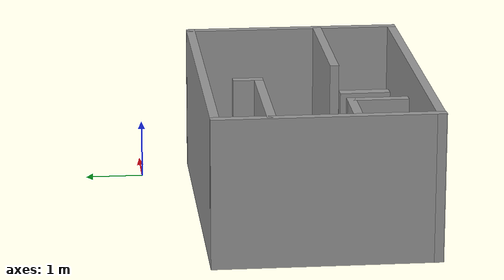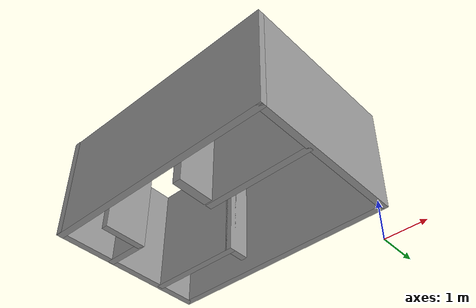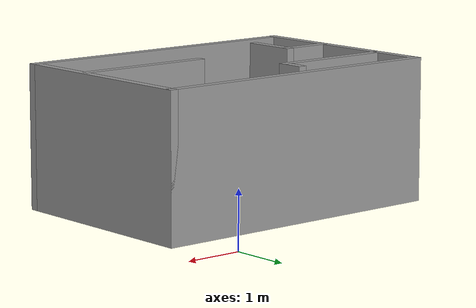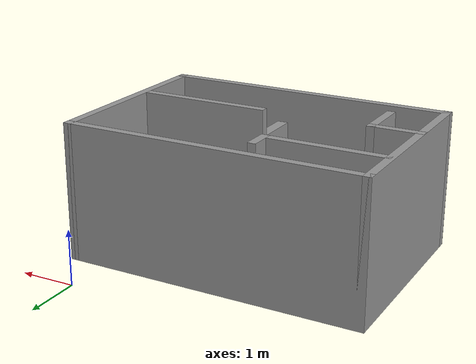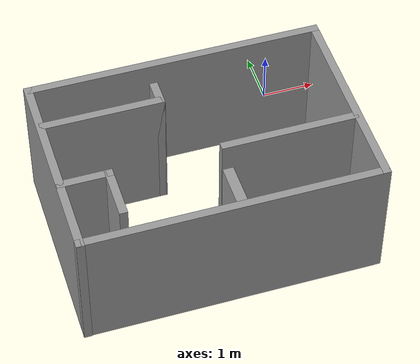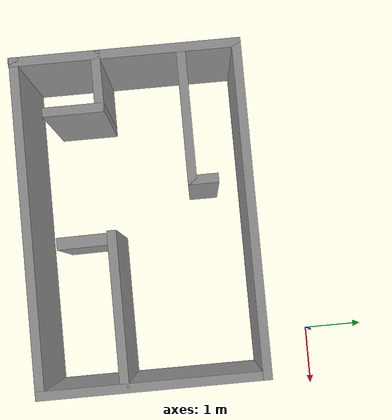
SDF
<?xml version='1.0'?>
<sdf version='1.7'>
  <model name='my_room'>
    <pose>-2.095 -2.3025 0 0 -0 0</pose>
    <link name='Door_0'>
      <collision name='Door_0_Collision'>
        <geometry>
          <box>
            <size>0.849447 0.2 2</size>
          </box>
        </geometry>
        <pose>0 0 1 0 -0 0</pose>
      </collision>
      <visual name='Door_0_Visual'>
        <pose>0 0 1 0 -0 0</pose>
        <geometry>
          <box>
            <size>0.849447 0.2 2</size>
          </box>
        </geometry>
        <material>
          <script>
            <uri>file://media/materials/scripts/gazebo.material</uri>
            <name>Gazebo/Grey</name>
          </script>
        </material>
      </visual>
      <pose>0.275337 -1.40772 0 0 -0 1.58194</pose>
    </link>
    <link name='Wall_10'>
      <collision name='Wall_10_Collision'>
        <geometry>
          <box>
            <size>3.76 0.15 2.5</size>
          </box>
        </geometry>
        <pose>0 0 1.25 0 -0 0</pose>
      </collision>
      <visual name='Wall_10_Visual'>
        <pose>0 0 1.25 0 -0 0</pose>
        <geometry>
          <box>
            <size>3.76 0.15 2.5</size>
          </box>
        </geometry>
        <material>
          <script>
            <uri>file://media/materials/scripts/gazebo.material</uri>
            <name>Gazebo/Grey</name>
          </script>
          <ambient>1 1 1 1</ambient>
        </material>
        <meta>
          <layer>0</layer>
        </meta>
      </visual>
      <pose>-2.675 -0.4225 0 0 -0 1.5708</pose>
    </link>
    <link name='Wall_11'>
      <collision name='Wall_11_Collision'>
        <geometry>
          <box>
            <size>5.5 0.15 2.5</size>
          </box>
        </geometry>
        <pose>0 0 1.25 0 -0 0</pose>
      </collision>
      <visual name='Wall_11_Visual'>
        <pose>0 0 1.25 0 -0 0</pose>
        <geometry>
          <box>
            <size>5.5 0.15 2.5</size>
          </box>
        </geometry>
        <material>
          <script>
            <uri>file://media/materials/scripts/gazebo.material</uri>
            <name>Gazebo/Grey</name>
          </script>
          <ambient>1 1 1 1</ambient>
        </material>
        <meta>
          <layer>0</layer>
        </meta>
      </visual>
      <pose>0 1.3825 0 0 -0 0</pose>
    </link>
    <link name='Wall_12'>
      <collision name='Wall_12_Collision'>
        <geometry>
          <box>
            <size>3.75 0.15 2.5</size>
          </box>
        </geometry>
        <pose>0 0 1.25 0 -0 0</pose>
      </collision>
      <visual name='Wall_12_Visual'>
        <pose>0 0 1.25 0 -0 0</pose>
        <geometry>
          <box>
            <size>3.75 0.15 2.5</size>
          </box>
        </geometry>
        <material>
          <script>
            <uri>file://media/materials/scripts/gazebo.material</uri>
            <name>Gazebo/Grey</name>
          </script>
          <ambient>1 1 1 1</ambient>
        </material>
        <meta>
          <layer>0</layer>
        </meta>
      </visual>
      <pose>2.675 -0.4175 0 0 -0 -1.5708</pose>
    </link>
    <link name='Wall_13'>
      <collision name='Wall_13_Collision'>
        <geometry>
          <box>
            <size>5.5 0.15 2.5</size>
          </box>
        </geometry>
        <pose>0 0 1.25 0 -0 0</pose>
      </collision>
      <visual name='Wall_13_Visual'>
        <pose>0 0 1.25 0 -0 0</pose>
        <geometry>
          <box>
            <size>5.5 0.15 2.5</size>
          </box>
        </geometry>
        <material>
          <script>
            <uri>file://media/materials/scripts/gazebo.material</uri>
            <name>Gazebo/Grey</name>
          </script>
          <ambient>1 1 1 1</ambient>
        </material>
        <meta>
          <layer>0</layer>
        </meta>
      </visual>
      <pose>0 -2.2175 0 0 -0 3.14159</pose>
    </link>
    <link name='Wall_15'>
      <collision name='Wall_15_Collision'>
        <geometry>
          <box>
            <size>1 0.15 2.5</size>
          </box>
        </geometry>
        <pose>0 0 1.25 0 -0 0</pose>
      </collision>
      <visual name='Wall_15_Visual'>
        <pose>0 0 1.25 0 -0 0</pose>
        <geometry>
          <box>
            <size>1 0.15 2.5</size>
          </box>
        </geometry>
        <material>
          <script>
            <uri>file://media/materials/scripts/gazebo.material</uri>
            <name>Gazebo/Grey</name>
          </script>
          <ambient>1 1 1 1</ambient>
        </material>
        <meta>
          <layer>0</layer>
        </meta>
      </visual>
      <pose>-2.24 -0.8975 0 0 -0 3.14159</pose>
    </link>
    <link name='Wall_17'>
      <collision name='Wall_17_Collision'>
        <geometry>
          <box>
            <size>1 0.15 2.5</size>
          </box>
        </geometry>
        <pose>0 0 1.25 0 -0 0</pose>
      </collision>
      <visual name='Wall_17_Visual'>
        <pose>0 0 1.25 0 -0 0</pose>
        <geometry>
          <box>
            <size>1 0.15 2.5</size>
          </box>
        </geometry>
        <material>
          <script>
            <uri>file://media/materials/scripts/gazebo.material</uri>
            <name>Gazebo/Grey</name>
          </script>
          <ambient>1 1 1 1</ambient>
        </material>
        <meta>
          <layer>0</layer>
        </meta>
      </visual>
      <pose>-1.815 -1.3225 0 0 -0 -1.5708</pose>
    </link>
    <link name='Wall_19'>
      <collision name='Wall_19_Collision'>
        <geometry>
          <box>
            <size>2.25 0.15 2.5</size>
          </box>
        </geometry>
        <pose>0 0 1.25 0 -0 0</pose>
      </collision>
      <visual name='Wall_19_Visual'>
        <pose>0 0 1.25 0 -0 0</pose>
        <geometry>
          <box>
            <size>2.25 0.15 2.5</size>
          </box>
        </geometry>
        <material>
          <script>
            <uri>file://media/materials/scripts/gazebo.material</uri>
            <name>Gazebo/Grey</name>
          </script>
          <ambient>1 1 1 1</ambient>
        </material>
        <meta>
          <layer>0</layer>
        </meta>
      </visual>
      <pose>-1.565 0.4825 0 0 -0 0</pose>
    </link>
    <link name='Wall_20'>
      <collision name='Wall_20_Collision'>
        <geometry>
          <box>
            <size>0.5 0.15 2.5</size>
          </box>
        </geometry>
        <pose>0 0 1.25 0 -0 0</pose>
      </collision>
      <visual name='Wall_20_Visual'>
        <pose>0 0 1.25 0 -0 0</pose>
        <geometry>
          <box>
            <size>0.5 0.15 2.5</size>
          </box>
        </geometry>
        <material>
          <script>
            <uri>file://media/materials/scripts/gazebo.material</uri>
            <name>Gazebo/Grey</name>
          </script>
          <ambient>1 1 1 1</ambient>
        </material>
        <meta>
          <layer>0</layer>
        </meta>
      </visual>
      <pose>-0.515 0.6575 0 0 -0 1.5708</pose>
    </link>
    <link name='Wall_22'>
      <collision name='Wall_22_Collision'>
        <geometry>
          <box>
            <size>2.5 0.15 2.5</size>
          </box>
        </geometry>
        <pose>0 0 1.25 0 -0 0</pose>
      </collision>
      <visual name='Wall_22_Visual'>
        <pose>0 0 1.25 0 -0 0</pose>
        <geometry>
          <box>
            <size>2.5 0.15 2.5</size>
          </box>
        </geometry>
        <material>
          <script>
            <uri>file://media/materials/scripts/gazebo.material</uri>
            <name>Gazebo/Grey</name>
          </script>
          <ambient>1 1 1 1</ambient>
        </material>
        <meta>
          <layer>0</layer>
        </meta>
      </visual>
      <pose>1.42 -0.8775 0 0 -0 0</pose>
    </link>
    <static>1</static>
  </model>
</sdf>
